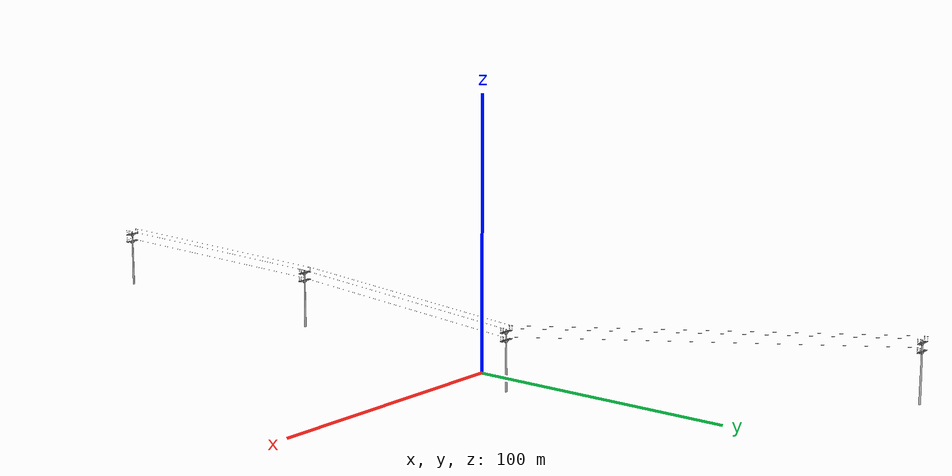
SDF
<?xml version="1.0" ?>
<sdf version="1.5">
  <model name="shudian">
    <static>true</static>
    <link name="shudian_link">
      <collision name="collision">
        <geometry>
          <mesh>
          <scale>0.002 0.002 0.002</scale>
            <uri>model://shudian/meshes/lowline.obj</uri>
          </mesh>
        </geometry>
      </collision>
      <visual name="visual">
        <geometry>
          <mesh>
          <scale>0.002 0.002 0.002</scale>
            <uri>model://shudian/meshes/lowline.obj</uri>
          </mesh>
        </geometry>
      </visual>
    </link>
  </model>
</sdf>
